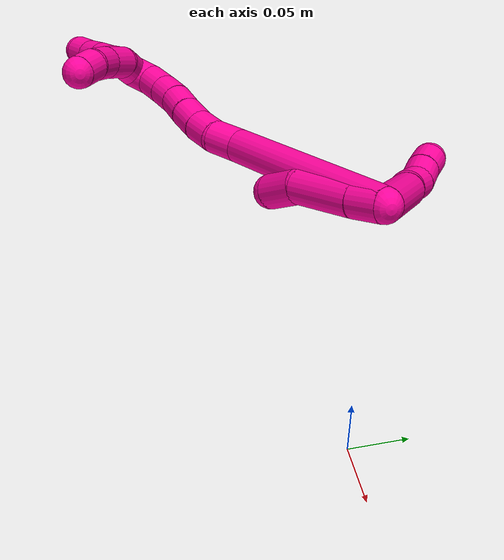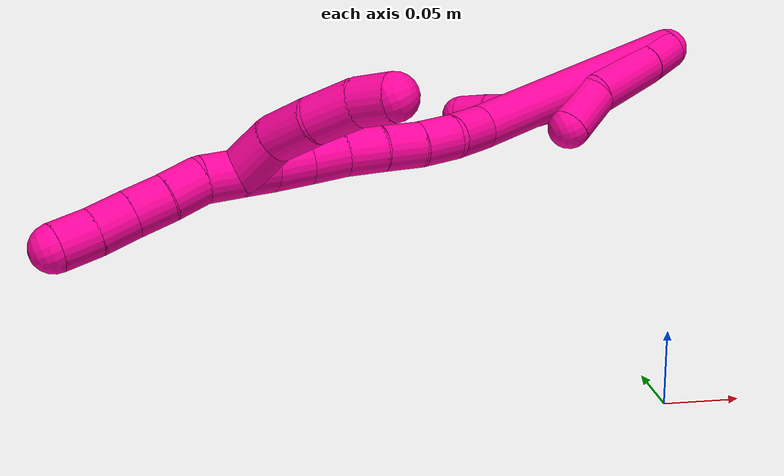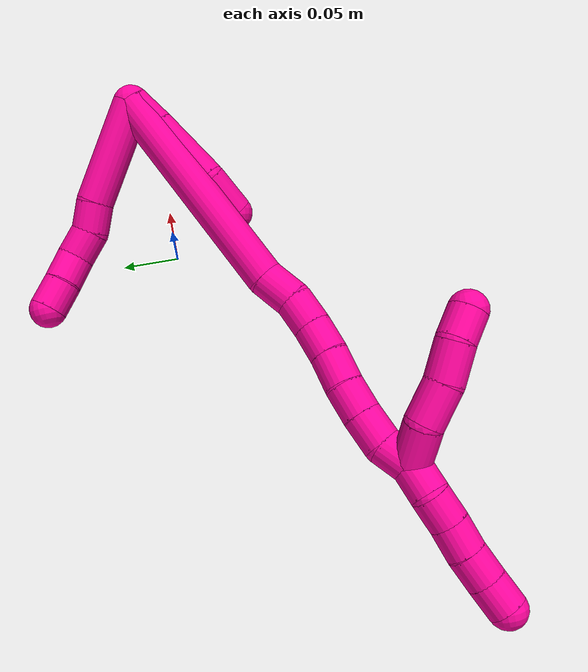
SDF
<sdf version="1.7">
 <world name="default">
  <model name="photoneo_s_sensor">
   <static>1</static>
   <pose>0 0 2 1.57079 1.57079 3.14159</pose>
   <link name="link">
    <inertial><mass>0.1</mass></inertial>
    <sensor name="sensor" type="depth">
     <update_rate>30</update_rate>
     <camera>
      <horizontal_fov>1.22</horizontal_fov>
      <image><width>1920</width><height>1200</height><format>B8G8R8</format></image>
      <clip><near>0.1</near><far>4</far></clip>
      <depth_camera><output>points</output></depth_camera>
     </camera>
     <plugin name="camera_plugin" filename="libgazebo_ros_depth_camera.so">
      <baseline>0.2</baseline>
      <alwaysOn>1</alwaysOn>
      <updateRate>0.0</updateRate>
      <cameraName>camera_ir</cameraName>
      <imageTopicName>/camera/color/image_raw</imageTopicName>
      <cameraInfoTopicName>/camera/color/camera_info</cameraInfoTopicName>
      <depthImageTopicName>/camera/depth/image_raw</depthImageTopicName>
      <depthImageCameraInfoTopicName>/camera/depth/camera_info</depthImageCameraInfoTopicName>
      <pointCloudTopicName>/camera/depth/points</pointCloudTopicName>
      <frameName>fr_optical</frameName>
      <pointCloudCutoff>0.1</pointCloudCutoff>
      <pointCloudCutoffMax>2.0</pointCloudCutoffMax>
      <distortionK1>0</distortionK1>
      <distortionK2>0</distortionK2>
      <distortionK3>0</distortionK3>
      <distortionT1>0</distortionT1>
      <distortionT2>0</distortionT2>
      <CxPrime>0</CxPrime>
      <Cx>0</Cx>
      <Cy>0</Cy>
      <focalLength>0</focalLength>
      <hackBaseline>0</hackBaseline>
     </plugin>
    </sensor>
   </link>
  </model>
  <model name="bin">
   <static>1</static>
   <link name="bottom">
    <collision name="collision-bottom">
     <pose>0 0 -0.01 0 -0 0</pose>
     <geometry><box><size>0.8 0.6 0.02</size></box></geometry>
     <surface>
      <friction><ode><mu>100</mu><mu2>100</mu2></ode></friction>
      <contact><collide_bitmask>65535</collide_bitmask></contact>
     </surface>
    </collision>
   </link>
   <link name="west_wall">
    <collision name="collision-west_wall">
     <pose>-0.41 0 0.1 0 -0 0</pose>
     <geometry><box><size>0.02 0.6 0.2</size></box></geometry>
     <surface>
      <friction><ode><mu>100</mu><mu2>100</mu2></ode></friction>
      <contact><collide_bitmask>65535</collide_bitmask></contact>
     </surface>
    </collision>
   </link>
   <link name="east_wall">
    <collision name="collision-east_wall">
     <pose>0.41 0 0.1 0 -0 0</pose>
     <geometry><box><size>0.02 0.6 0.2</size></box></geometry>
     <surface>
      <friction><ode><mu>100</mu><mu2>100</mu2></ode></friction>
      <contact><collide_bitmask>65535</collide_bitmask></contact>
     </surface>
    </collision>
   </link>
   <link name="south_wall">
    <collision name="collision-south_wall">
     <pose>0 -0.31 0.1 0 -0 0</pose>
     <geometry><box><size>0.8 0.02 0.2</size></box></geometry>
     <surface>
      <friction><ode><mu>100</mu><mu2>100</mu2></ode></friction>
      <contact><collide_bitmask>65535</collide_bitmask></contact>
     </surface>
    </collision>
   </link>
   <link name="north_wall">
    <collision name="collision-north_wall">
     <pose>0 0.31 0.1 0 -0 0</pose>
     <geometry><box><size>0.8 0.02 0.2</size></box></geometry>
     <surface>
      <friction><ode><mu>100</mu><mu2>100</mu2></ode></friction>
      <contact><collide_bitmask>65535</collide_bitmask></contact>
     </surface>
    </collision>
   </link>
  </model>
  <model name="18">
   <static>0</static>
   <link name="18">
    <collision name="collision-cylinder-e_1_2_8">
     <pose>0.019327 0.00426 0.02871 -0.147308 0.587452 -0.04463</pose>
     <geometry><cylinder><radius>0.0125</radius><length>0.06974</length></cylinder></geometry>
     <surface>
      <friction><ode><mu>1.16</mu><mu2>1.16</mu2><slip1>0</slip1><slip2>0</slip2></ode></friction>
      <contact><ode><kp>1e+06</kp><kd>1</kd><max_vel>0</max_vel><min_depth>0.001</min_depth></ode></contact>
     </surface>
    </collision>
    <visual name="visual-cylinder-e_1_2_8">
     <pose>0.019327 0.00426 0.02871 -0.147308 0.587452 -0.04463</pose>
     <geometry><cylinder><radius>0.0125</radius><length>0.06974</length></cylinder></geometry>
     <material><ambient>1 0.007843 0.615686 1</ambient></material>
    </visual>
    <collision name="collision-cylinder-e_2_8_9">
     <pose>0.042588 0.010217 0.066464 -0.185444 0.404083 -0.03809</pose>
     <geometry><cylinder><radius>0.0125</radius><length>0.020016</length></cylinder></geometry>
     <surface>
      <friction><ode><mu>1.16</mu><mu2>1.16</mu2><slip1>0</slip1><slip2>0</slip2></ode></friction>
      <contact><ode><kp>1e+06</kp><kd>1</kd><max_vel>0</max_vel><min_depth>0.001</min_depth></ode></contact>
     </surface>
    </collision>
    <visual name="visual-cylinder-e_2_8_9">
     <pose>0.042588 0.010217 0.066464 -0.185444 0.404083 -0.03809</pose>
     <geometry><cylinder><radius>0.0125</radius><length>0.020016</length></cylinder></geometry>
     <material><ambient>1 0.007843 0.615686 1</ambient></material>
    </visual>
    <collision name="collision-cylinder-e_3_9_10">
     <pose>0.053324 0.012513 0.082953 -0.080375 0.738617 -0.031125</pose>
     <geometry><cylinder><radius>0.0125</radius><length>0.020203</length></cylinder></geometry>
     <surface>
      <friction><ode><mu>1.16</mu><mu2>1.16</mu2><slip1>0</slip1><slip2>0</slip2></ode></friction>
      <contact><ode><kp>1e+06</kp><kd>1</kd><max_vel>0</max_vel><min_depth>0.001</min_depth></ode></contact>
     </surface>
    </collision>
    <visual name="visual-cylinder-e_3_9_10">
     <pose>0.053324 0.012513 0.082953 -0.080375 0.738617 -0.031125</pose>
     <geometry><cylinder><radius>0.0125</radius><length>0.020203</length></cylinder></geometry>
     <material><ambient>1 0.007843 0.615686 1</ambient></material>
    </visual>
    <collision name="collision-cylinder-e_4_10_11">
     <pose>0.065749 0.010625 0.098298 0.305149 0.596519 0.094477</pose>
     <geometry><cylinder><radius>0.0125</radius><length>0.020022</length></cylinder></geometry>
     <surface>
      <friction><ode><mu>1.16</mu><mu2>1.16</mu2><slip1>0</slip1><slip2>0</slip2></ode></friction>
      <contact><ode><kp>1e+06</kp><kd>1</kd><max_vel>0</max_vel><min_depth>0.001</min_depth></ode></contact>
     </surface>
    </collision>
    <visual name="visual-cylinder-e_4_10_11">
     <pose>0.065749 0.010625 0.098298 0.305149 0.596519 0.094477</pose>
     <geometry><cylinder><radius>0.0125</radius><length>0.020022</length></cylinder></geometry>
     <material><ambient>1 0.007843 0.615686 1</ambient></material>
    </visual>
    <collision name="collision-cylinder-e_5_11_6">
     <pose>0.077523 0.006342 0.113888 0.229179 0.661694 0.079021</pose>
     <geometry><cylinder><radius>0.0125</radius><length>0.020018</length></cylinder></geometry>
     <surface>
      <friction><ode><mu>1.16</mu><mu2>1.16</mu2><slip1>0</slip1><slip2>0</slip2></ode></friction>
      <contact><ode><kp>1e+06</kp><kd>1</kd><max_vel>0</max_vel><min_depth>0.001</min_depth></ode></contact>
     </surface>
    </collision>
    <visual name="visual-cylinder-e_5_11_6">
     <pose>0.077523 0.006342 0.113888 0.229179 0.661694 0.079021</pose>
     <geometry><cylinder><radius>0.0125</radius><length>0.020018</length></cylinder></geometry>
     <material><ambient>1 0.007843 0.615686 1</ambient></material>
    </visual>
    <collision name="collision-cylinder-e_1_2_12">
     <pose>-0.006513 9.4e-05 0.009606 -0.009834 -0.595772 0.003019</pose>
     <geometry><cylinder><radius>0.0125</radius><length>0.023212</length></cylinder></geometry>
     <surface>
      <friction><ode><mu>1.16</mu><mu2>1.16</mu2><slip1>0</slip1><slip2>0</slip2></ode></friction>
      <contact><ode><kp>1e+06</kp><kd>1</kd><max_vel>0</max_vel><min_depth>0.001</min_depth></ode></contact>
     </surface>
    </collision>
    <visual name="visual-cylinder-e_1_2_12">
     <pose>-0.006513 9.4e-05 0.009606 -0.009834 -0.595772 0.003019</pose>
     <geometry><cylinder><radius>0.0125</radius><length>0.023212</length></cylinder></geometry>
     <material><ambient>1 0.007843 0.615686 1</ambient></material>
    </visual>
    <collision name="collision-cylinder-e_2_12_13">
     <pose>-0.025567 -0.000728 0.039757 0.044588 -0.547637 -0.012526</pose>
     <geometry><cylinder><radius>0.0125</radius><length>0.048177</length></cylinder></geometry>
     <surface>
      <friction><ode><mu>1.16</mu><mu2>1.16</mu2><slip1>0</slip1><slip2>0</slip2></ode></friction>
      <contact><ode><kp>1e+06</kp><kd>1</kd><max_vel>0</max_vel><min_depth>0.001</min_depth></ode></contact>
     </surface>
    </collision>
    <visual name="visual-cylinder-e_2_12_13">
     <pose>-0.025567 -0.000728 0.039757 0.044588 -0.547637 -0.012526</pose>
     <geometry><cylinder><radius>0.0125</radius><length>0.048177</length></cylinder></geometry>
     <material><ambient>1 0.007843 0.615686 1</ambient></material>
    </visual>
    <collision name="collision-cylinder-e_3_13_5">
     <pose>-0.044684 0.002448 0.07233 -0.327982 -0.477534 0.080514</pose>
     <geometry><cylinder><radius>0.0125</radius><length>0.028611</length></cylinder></geometry>
     <surface>
      <friction><ode><mu>1.16</mu><mu2>1.16</mu2><slip1>0</slip1><slip2>0</slip2></ode></friction>
      <contact><ode><kp>1e+06</kp><kd>1</kd><max_vel>0</max_vel><min_depth>0.001</min_depth></ode></contact>
     </surface>
    </collision>
    <visual name="visual-cylinder-e_3_13_5">
     <pose>-0.044684 0.002448 0.07233 -0.327982 -0.477534 0.080514</pose>
     <geometry><cylinder><radius>0.0125</radius><length>0.028611</length></cylinder></geometry>
     <material><ambient>1 0.007843 0.615686 1</ambient></material>
    </visual>
    <collision name="collision-cylinder-e_1_2_14">
     <pose>-0.030527 -0.00844 0.066909 0.125473 -0.425062 -0.02711</pose>
     <geometry><cylinder><radius>0.0125</radius><length>0.148053</length></cylinder></geometry>
     <surface>
      <friction><ode><mu>1.16</mu><mu2>1.16</mu2><slip1>0</slip1><slip2>0</slip2></ode></friction>
      <contact><ode><kp>1e+06</kp><kd>1</kd><max_vel>0</max_vel><min_depth>0.001</min_depth></ode></contact>
     </surface>
    </collision>
    <visual name="visual-cylinder-e_1_2_14">
     <pose>-0.030527 -0.00844 0.066909 0.125473 -0.425062 -0.02711</pose>
     <geometry><cylinder><radius>0.0125</radius><length>0.148053</length></cylinder></geometry>
     <material><ambient>1 0.007843 0.615686 1</ambient></material>
    </visual>
    <collision name="collision-cylinder-e_2_14_15">
     <pose>-0.06814 -0.019314 0.142946 0.260641 -0.64353 -0.087324</pose>
     <geometry><cylinder><radius>0.0125</radius><length>0.02362</length></cylinder></geometry>
     <surface>
      <friction><ode><mu>1.16</mu><mu2>1.16</mu2><slip1>0</slip1><slip2>0</slip2></ode></friction>
      <contact><ode><kp>1e+06</kp><kd>1</kd><max_vel>0</max_vel><min_depth>0.001</min_depth></ode></contact>
     </surface>
    </collision>
    <visual name="visual-cylinder-e_2_14_15">
     <pose>-0.06814 -0.019314 0.142946 0.260641 -0.64353 -0.087324</pose>
     <geometry><cylinder><radius>0.0125</radius><length>0.02362</length></cylinder></geometry>
     <material><ambient>1 0.007843 0.615686 1</ambient></material>
    </visual>
    <collision name="collision-cylinder-e_3_15_16">
     <pose>-0.079013 -0.024458 0.161772 0.272437 -0.359705 -0.049832</pose>
     <geometry><cylinder><radius>0.0125</radius><length>0.021514</length></cylinder></geometry>
     <surface>
      <friction><ode><mu>1.16</mu><mu2>1.16</mu2><slip1>0</slip1><slip2>0</slip2></ode></friction>
      <contact><ode><kp>1e+06</kp><kd>1</kd><max_vel>0</max_vel><min_depth>0.001</min_depth></ode></contact>
     </surface>
    </collision>
    <visual name="visual-cylinder-e_3_15_16">
     <pose>-0.079013 -0.024458 0.161772 0.272437 -0.359705 -0.049832</pose>
     <geometry><cylinder><radius>0.0125</radius><length>0.021514</length></cylinder></geometry>
     <material><ambient>1 0.007843 0.615686 1</ambient></material>
    </visual>
    <collision name="collision-cylinder-e_4_16_17">
     <pose>-0.085663 -0.030871 0.181224 0.362908 -0.267872 -0.049433</pose>
     <geometry><cylinder><radius>0.0125</radius><length>0.021641</length></cylinder></geometry>
     <surface>
      <friction><ode><mu>1.16</mu><mu2>1.16</mu2><slip1>0</slip1><slip2>0</slip2></ode></friction>
      <contact><ode><kp>1e+06</kp><kd>1</kd><max_vel>0</max_vel><min_depth>0.001</min_depth></ode></contact>
     </surface>
    </collision>
    <visual name="visual-cylinder-e_4_16_17">
     <pose>-0.085663 -0.030871 0.181224 0.362908 -0.267872 -0.049433</pose>
     <geometry><cylinder><radius>0.0125</radius><length>0.021641</length></cylinder></geometry>
     <material><ambient>1 0.007843 0.615686 1</ambient></material>
    </visual>
    <collision name="collision-cylinder-e_5_17_18">
     <pose>-0.090544 -0.038079 0.201169 0.331143 -0.185008 -0.031001</pose>
     <geometry><cylinder><radius>0.0125</radius><length>0.021926</length></cylinder></geometry>
     <surface>
      <friction><ode><mu>1.16</mu><mu2>1.16</mu2><slip1>0</slip1><slip2>0</slip2></ode></friction>
      <contact><ode><kp>1e+06</kp><kd>1</kd><max_vel>0</max_vel><min_depth>0.001</min_depth></ode></contact>
     </surface>
    </collision>
    <visual name="visual-cylinder-e_5_17_18">
     <pose>-0.090544 -0.038079 0.201169 0.331143 -0.185008 -0.031001</pose>
     <geometry><cylinder><radius>0.0125</radius><length>0.021926</length></cylinder></geometry>
     <material><ambient>1 0.007843 0.615686 1</ambient></material>
    </visual>
    <collision name="collision-cylinder-e_6_18_19">
     <pose>-0.095561 -0.044288 0.221125 0.270308 -0.287928 -0.039421</pose>
     <geometry><cylinder><radius>0.0125</radius><length>0.021136</length></cylinder></geometry>
     <surface>
      <friction><ode><mu>1.16</mu><mu2>1.16</mu2><slip1>0</slip1><slip2>0</slip2></ode></friction>
      <contact><ode><kp>1e+06</kp><kd>1</kd><max_vel>0</max_vel><min_depth>0.001</min_depth></ode></contact>
     </surface>
    </collision>
    <visual name="visual-cylinder-e_6_18_19">
     <pose>-0.095561 -0.044288 0.221125 0.270308 -0.287928 -0.039421</pose>
     <geometry><cylinder><radius>0.0125</radius><length>0.021136</length></cylinder></geometry>
     <material><ambient>1 0.007843 0.615686 1</ambient></material>
    </visual>
    <collision name="collision-cylinder-e_7_19_20">
     <pose>-0.102374 -0.050003 0.240745 0.296322 -0.354293 -0.053427</pose>
     <geometry><cylinder><radius>0.0125</radius><length>0.021973</length></cylinder></geometry>
     <surface>
      <friction><ode><mu>1.16</mu><mu2>1.16</mu2><slip1>0</slip1><slip2>0</slip2></ode></friction>
      <contact><ode><kp>1e+06</kp><kd>1</kd><max_vel>0</max_vel><min_depth>0.001</min_depth></ode></contact>
     </surface>
    </collision>
    <visual name="visual-cylinder-e_7_19_20">
     <pose>-0.102374 -0.050003 0.240745 0.296322 -0.354293 -0.053427</pose>
     <geometry><cylinder><radius>0.0125</radius><length>0.021973</length></cylinder></geometry>
     <material><ambient>1 0.007843 0.615686 1</ambient></material>
    </visual>
    <collision name="collision-cylinder-e_8_20_1">
     <pose>-0.112472 -0.056274 0.257757 0.427704 -0.674335 -0.151968</pose>
     <geometry><cylinder><radius>0.0125</radius><length>0.020138</length></cylinder></geometry>
     <surface>
      <friction><ode><mu>1.16</mu><mu2>1.16</mu2><slip1>0</slip1><slip2>0</slip2></ode></friction>
      <contact><ode><kp>1e+06</kp><kd>1</kd><max_vel>0</max_vel><min_depth>0.001</min_depth></ode></contact>
     </surface>
    </collision>
    <visual name="visual-cylinder-e_8_20_1">
     <pose>-0.112472 -0.056274 0.257757 0.427704 -0.674335 -0.151968</pose>
     <geometry><cylinder><radius>0.0125</radius><length>0.020138</length></cylinder></geometry>
     <material><ambient>1 0.007843 0.615686 1</ambient></material>
    </visual>
    <collision name="collision-cylinder-e_1_1_21">
     <pose>-0.121785 -0.062467 0.273982 0.312614 -0.307487 -0.048833</pose>
     <geometry><cylinder><radius>0.0125</radius><length>0.02</length></cylinder></geometry>
     <surface>
      <friction><ode><mu>1.16</mu><mu2>1.16</mu2><slip1>0</slip1><slip2>0</slip2></ode></friction>
      <contact><ode><kp>1e+06</kp><kd>1</kd><max_vel>0</max_vel><min_depth>0.001</min_depth></ode></contact>
     </surface>
    </collision>
    <visual name="visual-cylinder-e_1_1_21">
     <pose>-0.121785 -0.062467 0.273982 0.312614 -0.307487 -0.048833</pose>
     <geometry><cylinder><radius>0.0125</radius><length>0.02</length></cylinder></geometry>
     <material><ambient>1 0.007843 0.615686 1</ambient></material>
    </visual>
    <collision name="collision-cylinder-e_2_21_22">
     <pose>-0.128463 -0.065427 0.292361 0.0031 -0.373783 -0.000586</pose>
     <geometry><cylinder><radius>0.0125</radius><length>0.02</length></cylinder></geometry>
     <surface>
      <friction><ode><mu>1.16</mu><mu2>1.16</mu2><slip1>0</slip1><slip2>0</slip2></ode></friction>
      <contact><ode><kp>1e+06</kp><kd>1</kd><max_vel>0</max_vel><min_depth>0.001</min_depth></ode></contact>
     </surface>
    </collision>
    <visual name="visual-cylinder-e_2_21_22">
     <pose>-0.128463 -0.065427 0.292361 0.0031 -0.373783 -0.000586</pose>
     <geometry><cylinder><radius>0.0125</radius><length>0.02</length></cylinder></geometry>
     <material><ambient>1 0.007843 0.615686 1</ambient></material>
    </visual>
    <collision name="collision-cylinder-e_3_22_23">
     <pose>-0.135105 -0.065884 0.311203 0.044884 -0.303653 -0.006869</pose>
     <geometry><cylinder><radius>0.0125</radius><length>0.02</length></cylinder></geometry>
     <surface>
      <friction><ode><mu>1.16</mu><mu2>1.16</mu2><slip1>0</slip1><slip2>0</slip2></ode></friction>
      <contact><ode><kp>1e+06</kp><kd>1</kd><max_vel>0</max_vel><min_depth>0.001</min_depth></ode></contact>
     </surface>
    </collision>
    <visual name="visual-cylinder-e_3_22_23">
     <pose>-0.135105 -0.065884 0.311203 0.044884 -0.303653 -0.006869</pose>
     <geometry><cylinder><radius>0.0125</radius><length>0.02</length></cylinder></geometry>
     <material><ambient>1 0.007843 0.615686 1</ambient></material>
    </visual>
    <collision name="collision-cylinder-e_4_23_24">
     <pose>-0.141996 -0.066678 0.329936 0.039725 -0.400738 -0.008069</pose>
     <geometry><cylinder><radius>0.0125</radius><length>0.02</length></cylinder></geometry>
     <surface>
      <friction><ode><mu>1.16</mu><mu2>1.16</mu2><slip1>0</slip1><slip2>0</slip2></ode></friction>
      <contact><ode><kp>1e+06</kp><kd>1</kd><max_vel>0</max_vel><min_depth>0.001</min_depth></ode></contact>
     </surface>
    </collision>
    <visual name="visual-cylinder-e_4_23_24">
     <pose>-0.141996 -0.066678 0.329936 0.039725 -0.400738 -0.008069</pose>
     <geometry><cylinder><radius>0.0125</radius><length>0.02</length></cylinder></geometry>
     <material><ambient>1 0.007843 0.615686 1</ambient></material>
    </visual>
    <collision name="collision-cylinder-e_5_24_4">
     <pose>-0.149919 -0.068176 0.348222 0.123986 -0.413957 -0.026067</pose>
     <geometry><cylinder><radius>0.0125</radius><length>0.02</length></cylinder></geometry>
     <surface>
      <friction><ode><mu>1.16</mu><mu2>1.16</mu2><slip1>0</slip1><slip2>0</slip2></ode></friction>
      <contact><ode><kp>1e+06</kp><kd>1</kd><max_vel>0</max_vel><min_depth>0.001</min_depth></ode></contact>
     </surface>
    </collision>
    <visual name="visual-cylinder-e_5_24_4">
     <pose>-0.149919 -0.068176 0.348222 0.123986 -0.413957 -0.026067</pose>
     <geometry><cylinder><radius>0.0125</radius><length>0.02</length></cylinder></geometry>
     <material><ambient>1 0.007843 0.615686 1</ambient></material>
    </visual>
    <collision name="collision-cylinder-e_1_1_25">
     <pose>-0.124135 -0.064967 0.253211 2.70711 -0.394821 -1.47244</pose>
     <geometry><cylinder><radius>0.0125</radius><length>0.027952</length></cylinder></geometry>
     <surface>
      <friction><ode><mu>1.16</mu><mu2>1.16</mu2><slip1>0</slip1><slip2>0</slip2></ode></friction>
      <contact><ode><kp>1e+06</kp><kd>1</kd><max_vel>0</max_vel><min_depth>0.001</min_depth></ode></contact>
     </surface>
    </collision>
    <visual name="visual-cylinder-e_1_1_25">
     <pose>-0.124135 -0.064967 0.253211 2.70711 -0.394821 -1.47244</pose>
     <geometry><cylinder><radius>0.0125</radius><length>0.027952</length></cylinder></geometry>
     <material><ambient>1 0.007843 0.615686 1</ambient></material>
    </visual>
    <collision name="collision-cylinder-e_2_25_26">
     <pose>-0.137482 -0.072156 0.231013 2.97557 -0.642926 -2.65191</pose>
     <geometry><cylinder><radius>0.0125</radius><length>0.026594</length></cylinder></geometry>
     <surface>
      <friction><ode><mu>1.16</mu><mu2>1.16</mu2><slip1>0</slip1><slip2>0</slip2></ode></friction>
      <contact><ode><kp>1e+06</kp><kd>1</kd><max_vel>0</max_vel><min_depth>0.001</min_depth></ode></contact>
     </surface>
    </collision>
    <visual name="visual-cylinder-e_2_25_26">
     <pose>-0.137482 -0.072156 0.231013 2.97557 -0.642926 -2.65191</pose>
     <geometry><cylinder><radius>0.0125</radius><length>0.026594</length></cylinder></geometry>
     <material><ambient>1 0.007843 0.615686 1</ambient></material>
    </visual>
    <collision name="collision-cylinder-e_3_26_27">
     <pose>-0.151342 -0.074764 0.209362 3.06563 -0.484426 -2.83637</pose>
     <geometry><cylinder><radius>0.0125</radius><length>0.025285</length></cylinder></geometry>
     <surface>
      <friction><ode><mu>1.16</mu><mu2>1.16</mu2><slip1>0</slip1><slip2>0</slip2></ode></friction>
      <contact><ode><kp>1e+06</kp><kd>1</kd><max_vel>0</max_vel><min_depth>0.001</min_depth></ode></contact>
     </surface>
    </collision>
    <visual name="visual-cylinder-e_3_26_27">
     <pose>-0.151342 -0.074764 0.209362 3.06563 -0.484426 -2.83637</pose>
     <geometry><cylinder><radius>0.0125</radius><length>0.025285</length></cylinder></geometry>
     <material><ambient>1 0.007843 0.615686 1</ambient></material>
    </visual>
    <collision name="collision-cylinder-e_4_27_3">
     <pose>-0.163198 -0.074334 0.190179 -2.98356 -0.633385 2.66745</pose>
     <geometry><cylinder><radius>0.0125</radius><length>0.020169</length></cylinder></geometry>
     <surface>
      <friction><ode><mu>1.16</mu><mu2>1.16</mu2><slip1>0</slip1><slip2>0</slip2></ode></friction>
      <contact><ode><kp>1e+06</kp><kd>1</kd><max_vel>0</max_vel><min_depth>0.001</min_depth></ode></contact>
     </surface>
    </collision>
    <visual name="visual-cylinder-e_4_27_3">
     <pose>-0.163198 -0.074334 0.190179 -2.98356 -0.633385 2.66745</pose>
     <geometry><cylinder><radius>0.0125</radius><length>0.020169</length></cylinder></geometry>
     <material><ambient>1 0.007843 0.615686 1</ambient></material>
    </visual>
    <collision name="collision-sphere-3">
     <pose>-0.169167 -0.073054 0.182152 0 -0 0</pose>
     <geometry><sphere><radius>0.0125</radius></sphere></geometry>
     <surface>
      <friction><ode><mu>1.16</mu><mu2>1.16</mu2><slip1>0</slip1><slip2>0</slip2></ode></friction>
      <contact><ode><kp>1e+06</kp><kd>1</kd><max_vel>0</max_vel><min_depth>0.001</min_depth></ode></contact>
     </surface>
    </collision>
    <visual name="visual-sphere-3">
     <pose>-0.169167 -0.073054 0.182152 0 -0 0</pose>
     <geometry><sphere><radius>0.0125</radius></sphere></geometry>
     <material><ambient>1 0.007843 0.615686 1</ambient></material>
    </visual>
    <collision name="collision-sphere-27">
     <pose>-0.15723 -0.075613 0.198206 0 -0 0</pose>
     <geometry><sphere><radius>0.0125</radius></sphere></geometry>
     <surface>
      <friction><ode><mu>1.16</mu><mu2>1.16</mu2><slip1>0</slip1><slip2>0</slip2></ode></friction>
      <contact><ode><kp>1e+06</kp><kd>1</kd><max_vel>0</max_vel><min_depth>0.001</min_depth></ode></contact>
     </surface>
    </collision>
    <visual name="visual-sphere-27">
     <pose>-0.15723 -0.075613 0.198206 0 -0 0</pose>
     <geometry><sphere><radius>0.0125</radius></sphere></geometry>
     <material><ambient>1 0.007843 0.615686 1</ambient></material>
    </visual>
    <collision name="collision-sphere-26">
     <pose>-0.145454 -0.073915 0.220517 0 -0 0</pose>
     <geometry><sphere><radius>0.0125</radius></sphere></geometry>
     <surface>
      <friction><ode><mu>1.16</mu><mu2>1.16</mu2><slip1>0</slip1><slip2>0</slip2></ode></friction>
      <contact><ode><kp>1e+06</kp><kd>1</kd><max_vel>0</max_vel><min_depth>0.001</min_depth></ode></contact>
     </surface>
    </collision>
    <visual name="visual-sphere-26">
     <pose>-0.145454 -0.073915 0.220517 0 -0 0</pose>
     <geometry><sphere><radius>0.0125</radius></sphere></geometry>
     <material><ambient>1 0.007843 0.615686 1</ambient></material>
    </visual>
    <collision name="collision-sphere-25">
     <pose>-0.12951 -0.070397 0.241509 0 -0 0</pose>
     <geometry><sphere><radius>0.0125</radius></sphere></geometry>
     <surface>
      <friction><ode><mu>1.16</mu><mu2>1.16</mu2><slip1>0</slip1><slip2>0</slip2></ode></friction>
      <contact><ode><kp>1e+06</kp><kd>1</kd><max_vel>0</max_vel><min_depth>0.001</min_depth></ode></contact>
     </surface>
    </collision>
    <visual name="visual-sphere-25">
     <pose>-0.12951 -0.070397 0.241509 0 -0 0</pose>
     <geometry><sphere><radius>0.0125</radius></sphere></geometry>
     <material><ambient>1 0.007843 0.615686 1</ambient></material>
    </visual>
    <collision name="collision-sphere-4">
     <pose>-0.153942 -0.069308 0.357307 0 -0 0</pose>
     <geometry><sphere><radius>0.0125</radius></sphere></geometry>
     <surface>
      <friction><ode><mu>1.16</mu><mu2>1.16</mu2><slip1>0</slip1><slip2>0</slip2></ode></friction>
      <contact><ode><kp>1e+06</kp><kd>1</kd><max_vel>0</max_vel><min_depth>0.001</min_depth></ode></contact>
     </surface>
    </collision>
    <visual name="visual-sphere-4">
     <pose>-0.153942 -0.069308 0.357307 0 -0 0</pose>
     <geometry><sphere><radius>0.0125</radius></sphere></geometry>
     <material><ambient>1 0.007843 0.615686 1</ambient></material>
    </visual>
    <collision name="collision-sphere-24">
     <pose>-0.145897 -0.067044 0.339137 0 -0 0</pose>
     <geometry><sphere><radius>0.0125</radius></sphere></geometry>
     <surface>
      <friction><ode><mu>1.16</mu><mu2>1.16</mu2><slip1>0</slip1><slip2>0</slip2></ode></friction>
      <contact><ode><kp>1e+06</kp><kd>1</kd><max_vel>0</max_vel><min_depth>0.001</min_depth></ode></contact>
     </surface>
    </collision>
    <visual name="visual-sphere-24">
     <pose>-0.145897 -0.067044 0.339137 0 -0 0</pose>
     <geometry><sphere><radius>0.0125</radius></sphere></geometry>
     <material><ambient>1 0.007843 0.615686 1</ambient></material>
    </visual>
    <collision name="collision-sphere-23">
     <pose>-0.138095 -0.066313 0.320736 0 -0 0</pose>
     <geometry><sphere><radius>0.0125</radius></sphere></geometry>
     <surface>
      <friction><ode><mu>1.16</mu><mu2>1.16</mu2><slip1>0</slip1><slip2>0</slip2></ode></friction>
      <contact><ode><kp>1e+06</kp><kd>1</kd><max_vel>0</max_vel><min_depth>0.001</min_depth></ode></contact>
     </surface>
    </collision>
    <visual name="visual-sphere-23">
     <pose>-0.138095 -0.066313 0.320736 0 -0 0</pose>
     <geometry><sphere><radius>0.0125</radius></sphere></geometry>
     <material><ambient>1 0.007843 0.615686 1</ambient></material>
    </visual>
    <collision name="collision-sphere-22">
     <pose>-0.132115 -0.065456 0.30167 0 -0 0</pose>
     <geometry><sphere><radius>0.0125</radius></sphere></geometry>
     <surface>
      <friction><ode><mu>1.16</mu><mu2>1.16</mu2><slip1>0</slip1><slip2>0</slip2></ode></friction>
      <contact><ode><kp>1e+06</kp><kd>1</kd><max_vel>0</max_vel><min_depth>0.001</min_depth></ode></contact>
     </surface>
    </collision>
    <visual name="visual-sphere-22">
     <pose>-0.132115 -0.065456 0.30167 0 -0 0</pose>
     <geometry><sphere><radius>0.0125</radius></sphere></geometry>
     <material><ambient>1 0.007843 0.615686 1</ambient></material>
    </visual>
    <collision name="collision-sphere-21">
     <pose>-0.124812 -0.065399 0.283051 0 -0 0</pose>
     <geometry><sphere><radius>0.0125</radius></sphere></geometry>
     <surface>
      <friction><ode><mu>1.16</mu><mu2>1.16</mu2><slip1>0</slip1><slip2>0</slip2></ode></friction>
      <contact><ode><kp>1e+06</kp><kd>1</kd><max_vel>0</max_vel><min_depth>0.001</min_depth></ode></contact>
     </surface>
    </collision>
    <visual name="visual-sphere-21">
     <pose>-0.124812 -0.065399 0.283051 0 -0 0</pose>
     <geometry><sphere><radius>0.0125</radius></sphere></geometry>
     <material><ambient>1 0.007843 0.615686 1</ambient></material>
    </visual>
    <collision name="collision-sphere-1">
     <pose>-0.118759 -0.059536 0.264913 0 -0 0</pose>
     <geometry><sphere><radius>0.0125</radius></sphere></geometry>
     <surface>
      <friction><ode><mu>1.16</mu><mu2>1.16</mu2><slip1>0</slip1><slip2>0</slip2></ode></friction>
      <contact><ode><kp>1e+06</kp><kd>1</kd><max_vel>0</max_vel><min_depth>0.001</min_depth></ode></contact>
     </surface>
    </collision>
    <visual name="visual-sphere-1">
     <pose>-0.118759 -0.059536 0.264913 0 -0 0</pose>
     <geometry><sphere><radius>0.0125</radius></sphere></geometry>
     <material><ambient>1 0.007843 0.615686 1</ambient></material>
    </visual>
    <collision name="collision-sphere-6">
     <pose>0.083673 0.004548 0.121578 0 -0 0</pose>
     <geometry><sphere><radius>0.0125</radius></sphere></geometry>
     <surface>
      <friction><ode><mu>1.16</mu><mu2>1.16</mu2><slip1>0</slip1><slip2>0</slip2></ode></friction>
      <contact><ode><kp>1e+06</kp><kd>1</kd><max_vel>0</max_vel><min_depth>0.001</min_depth></ode></contact>
     </surface>
    </collision>
    <visual name="visual-sphere-6">
     <pose>0.083673 0.004548 0.121578 0 -0 0</pose>
     <geometry><sphere><radius>0.0125</radius></sphere></geometry>
     <material><ambient>1 0.007843 0.615686 1</ambient></material>
    </visual>
    <collision name="collision-sphere-11">
     <pose>0.071373 0.008136 0.106198 0 -0 0</pose>
     <geometry><sphere><radius>0.0125</radius></sphere></geometry>
     <surface>
      <friction><ode><mu>1.16</mu><mu2>1.16</mu2><slip1>0</slip1><slip2>0</slip2></ode></friction>
      <contact><ode><kp>1e+06</kp><kd>1</kd><max_vel>0</max_vel><min_depth>0.001</min_depth></ode></contact>
     </surface>
    </collision>
    <visual name="visual-sphere-11">
     <pose>0.071373 0.008136 0.106198 0 -0 0</pose>
     <geometry><sphere><radius>0.0125</radius></sphere></geometry>
     <material><ambient>1 0.007843 0.615686 1</ambient></material>
    </visual>
    <collision name="collision-sphere-10">
     <pose>0.060125 0.013113 0.090398 0 -0 0</pose>
     <geometry><sphere><radius>0.0125</radius></sphere></geometry>
     <surface>
      <friction><ode><mu>1.16</mu><mu2>1.16</mu2><slip1>0</slip1><slip2>0</slip2></ode></friction>
      <contact><ode><kp>1e+06</kp><kd>1</kd><max_vel>0</max_vel><min_depth>0.001</min_depth></ode></contact>
     </surface>
    </collision>
    <visual name="visual-sphere-10">
     <pose>0.060125 0.013113 0.090398 0 -0 0</pose>
     <geometry><sphere><radius>0.0125</radius></sphere></geometry>
     <material><ambient>1 0.007843 0.615686 1</ambient></material>
    </visual>
    <collision name="collision-sphere-9">
     <pose>0.046523 0.011914 0.075508 0 -0 0</pose>
     <geometry><sphere><radius>0.0125</radius></sphere></geometry>
     <surface>
      <friction><ode><mu>1.16</mu><mu2>1.16</mu2><slip1>0</slip1><slip2>0</slip2></ode></friction>
      <contact><ode><kp>1e+06</kp><kd>1</kd><max_vel>0</max_vel><min_depth>0.001</min_depth></ode></contact>
     </surface>
    </collision>
    <visual name="visual-sphere-9">
     <pose>0.046523 0.011914 0.075508 0 -0 0</pose>
     <geometry><sphere><radius>0.0125</radius></sphere></geometry>
     <material><ambient>1 0.007843 0.615686 1</ambient></material>
    </visual>
    <collision name="collision-sphere-2">
     <geometry><sphere><radius>0.0125</radius></sphere></geometry>
     <surface>
      <friction><ode><mu>1.16</mu><mu2>1.16</mu2><slip1>0</slip1><slip2>0</slip2></ode></friction>
      <contact><ode><kp>1e+06</kp><kd>1</kd><max_vel>0</max_vel><min_depth>0.001</min_depth></ode></contact>
     </surface>
    </collision>
    <visual name="visual-sphere-2">
     <geometry><sphere><radius>0.0125</radius></sphere></geometry>
     <material><ambient>1 0.007843 0.615686 1</ambient></material>
    </visual>
    <collision name="collision-sphere-19">
     <pose>-0.098562 -0.046994 0.23089 0 -0 0</pose>
     <geometry><sphere><radius>0.0125</radius></sphere></geometry>
     <surface>
      <friction><ode><mu>1.16</mu><mu2>1.16</mu2><slip1>0</slip1><slip2>0</slip2></ode></friction>
      <contact><ode><kp>1e+06</kp><kd>1</kd><max_vel>0</max_vel><min_depth>0.001</min_depth></ode></contact>
     </surface>
    </collision>
    <visual name="visual-sphere-19">
     <pose>-0.098562 -0.046994 0.23089 0 -0 0</pose>
     <geometry><sphere><radius>0.0125</radius></sphere></geometry>
     <material><ambient>1 0.007843 0.615686 1</ambient></material>
    </visual>
    <collision name="collision-sphere-8">
     <pose>0.038653 0.00852 0.05742 0 -0 0</pose>
     <geometry><sphere><radius>0.0125</radius></sphere></geometry>
     <surface>
      <friction><ode><mu>1.16</mu><mu2>1.16</mu2><slip1>0</slip1><slip2>0</slip2></ode></friction>
      <contact><ode><kp>1e+06</kp><kd>1</kd><max_vel>0</max_vel><min_depth>0.001</min_depth></ode></contact>
     </surface>
    </collision>
    <visual name="visual-sphere-8">
     <pose>0.038653 0.00852 0.05742 0 -0 0</pose>
     <geometry><sphere><radius>0.0125</radius></sphere></geometry>
     <material><ambient>1 0.007843 0.615686 1</ambient></material>
    </visual>
    <collision name="collision-sphere-12">
     <pose>-0.013025 0.000189 0.019212 0 -0 0</pose>
     <geometry><sphere><radius>0.0125</radius></sphere></geometry>
     <surface>
      <friction><ode><mu>1.16</mu><mu2>1.16</mu2><slip1>0</slip1><slip2>0</slip2></ode></friction>
      <contact><ode><kp>1e+06</kp><kd>1</kd><max_vel>0</max_vel><min_depth>0.001</min_depth></ode></contact>
     </surface>
    </collision>
    <visual name="visual-sphere-12">
     <pose>-0.013025 0.000189 0.019212 0 -0 0</pose>
     <geometry><sphere><radius>0.0125</radius></sphere></geometry>
     <material><ambient>1 0.007843 0.615686 1</ambient></material>
    </visual>
    <collision name="collision-sphere-13">
     <pose>-0.03811 -0.001644 0.060302 0 -0 0</pose>
     <geometry><sphere><radius>0.0125</radius></sphere></geometry>
     <surface>
      <friction><ode><mu>1.16</mu><mu2>1.16</mu2><slip1>0</slip1><slip2>0</slip2></ode></friction>
      <contact><ode><kp>1e+06</kp><kd>1</kd><max_vel>0</max_vel><min_depth>0.001</min_depth></ode></contact>
     </surface>
    </collision>
    <visual name="visual-sphere-13">
     <pose>-0.03811 -0.001644 0.060302 0 -0 0</pose>
     <geometry><sphere><radius>0.0125</radius></sphere></geometry>
     <material><ambient>1 0.007843 0.615686 1</ambient></material>
    </visual>
    <collision name="collision-sphere-5">
     <pose>-0.051259 0.006541 0.084358 0 -0 0</pose>
     <geometry><sphere><radius>0.0125</radius></sphere></geometry>
     <surface>
      <friction><ode><mu>1.16</mu><mu2>1.16</mu2><slip1>0</slip1><slip2>0</slip2></ode></friction>
      <contact><ode><kp>1e+06</kp><kd>1</kd><max_vel>0</max_vel><min_depth>0.001</min_depth></ode></contact>
     </surface>
    </collision>
    <visual name="visual-sphere-5">
     <pose>-0.051259 0.006541 0.084358 0 -0 0</pose>
     <geometry><sphere><radius>0.0125</radius></sphere></geometry>
     <material><ambient>1 0.007843 0.615686 1</ambient></material>
    </visual>
    <collision name="collision-sphere-14">
     <pose>-0.061054 -0.016879 0.133818 0 -0 0</pose>
     <geometry><sphere><radius>0.0125</radius></sphere></geometry>
     <surface>
      <friction><ode><mu>1.16</mu><mu2>1.16</mu2><slip1>0</slip1><slip2>0</slip2></ode></friction>
      <contact><ode><kp>1e+06</kp><kd>1</kd><max_vel>0</max_vel><min_depth>0.001</min_depth></ode></contact>
     </surface>
    </collision>
    <visual name="visual-sphere-14">
     <pose>-0.061054 -0.016879 0.133818 0 -0 0</pose>
     <geometry><sphere><radius>0.0125</radius></sphere></geometry>
     <material><ambient>1 0.007843 0.615686 1</ambient></material>
    </visual>
    <collision name="collision-sphere-15">
     <pose>-0.075226 -0.021749 0.152075 0 -0 0</pose>
     <geometry><sphere><radius>0.0125</radius></sphere></geometry>
     <surface>
      <friction><ode><mu>1.16</mu><mu2>1.16</mu2><slip1>0</slip1><slip2>0</slip2></ode></friction>
      <contact><ode><kp>1e+06</kp><kd>1</kd><max_vel>0</max_vel><min_depth>0.001</min_depth></ode></contact>
     </surface>
    </collision>
    <visual name="visual-sphere-15">
     <pose>-0.075226 -0.021749 0.152075 0 -0 0</pose>
     <geometry><sphere><radius>0.0125</radius></sphere></geometry>
     <material><ambient>1 0.007843 0.615686 1</ambient></material>
    </visual>
    <collision name="collision-sphere-16">
     <pose>-0.082799 -0.027167 0.171469 0 -0 0</pose>
     <geometry><sphere><radius>0.0125</radius></sphere></geometry>
     <surface>
      <friction><ode><mu>1.16</mu><mu2>1.16</mu2><slip1>0</slip1><slip2>0</slip2></ode></friction>
      <contact><ode><kp>1e+06</kp><kd>1</kd><max_vel>0</max_vel><min_depth>0.001</min_depth></ode></contact>
     </surface>
    </collision>
    <visual name="visual-sphere-16">
     <pose>-0.082799 -0.027167 0.171469 0 -0 0</pose>
     <geometry><sphere><radius>0.0125</radius></sphere></geometry>
     <material><ambient>1 0.007843 0.615686 1</ambient></material>
    </visual>
    <collision name="collision-sphere-17">
     <pose>-0.088527 -0.034575 0.190979 0 -0 0</pose>
     <geometry><sphere><radius>0.0125</radius></sphere></geometry>
     <surface>
      <friction><ode><mu>1.16</mu><mu2>1.16</mu2><slip1>0</slip1><slip2>0</slip2></ode></friction>
      <contact><ode><kp>1e+06</kp><kd>1</kd><max_vel>0</max_vel><min_depth>0.001</min_depth></ode></contact>
     </surface>
    </collision>
    <visual name="visual-sphere-17">
     <pose>-0.088527 -0.034575 0.190979 0 -0 0</pose>
     <geometry><sphere><radius>0.0125</radius></sphere></geometry>
     <material><ambient>1 0.007843 0.615686 1</ambient></material>
    </visual>
    <collision name="collision-sphere-18">
     <pose>-0.09256 -0.041582 0.21136 0 -0 0</pose>
     <geometry><sphere><radius>0.0125</radius></sphere></geometry>
     <surface>
      <friction><ode><mu>1.16</mu><mu2>1.16</mu2><slip1>0</slip1><slip2>0</slip2></ode></friction>
      <contact><ode><kp>1e+06</kp><kd>1</kd><max_vel>0</max_vel><min_depth>0.001</min_depth></ode></contact>
     </surface>
    </collision>
    <visual name="visual-sphere-18">
     <pose>-0.09256 -0.041582 0.21136 0 -0 0</pose>
     <geometry><sphere><radius>0.0125</radius></sphere></geometry>
     <material><ambient>1 0.007843 0.615686 1</ambient></material>
    </visual>
    <collision name="collision-sphere-20">
     <pose>-0.106185 -0.053012 0.2506 0 -0 0</pose>
     <geometry><sphere><radius>0.0125</radius></sphere></geometry>
     <surface>
      <friction><ode><mu>1.16</mu><mu2>1.16</mu2><slip1>0</slip1><slip2>0</slip2></ode></friction>
      <contact><ode><kp>1e+06</kp><kd>1</kd><max_vel>0</max_vel><min_depth>0.001</min_depth></ode></contact>
     </surface>
    </collision>
    <visual name="visual-sphere-20">
     <pose>-0.106185 -0.053012 0.2506 0 -0 0</pose>
     <geometry><sphere><radius>0.0125</radius></sphere></geometry>
     <material><ambient>1 0.007843 0.615686 1</ambient></material>
    </visual>
    <inertial>
     <pose>-0.056676 -0.025958 0.142905 0 -0 0</pose>
     <mass>0.75</mass>
     <inertia>
      <ixx>0.000283</ixx>
      <ixy>0</ixy>
      <ixz>0</ixz>
      <iyy>0.000334</iyy>
      <iyz>0</iyz>
      <izz>0.000184</izz>
     </inertia>
    </inertial>
   </link>
   <pose>-0.00543 0.009667 0.230574 -1.9481 0.044596 1.59842</pose>
  </model>
 </world>
</sdf>
